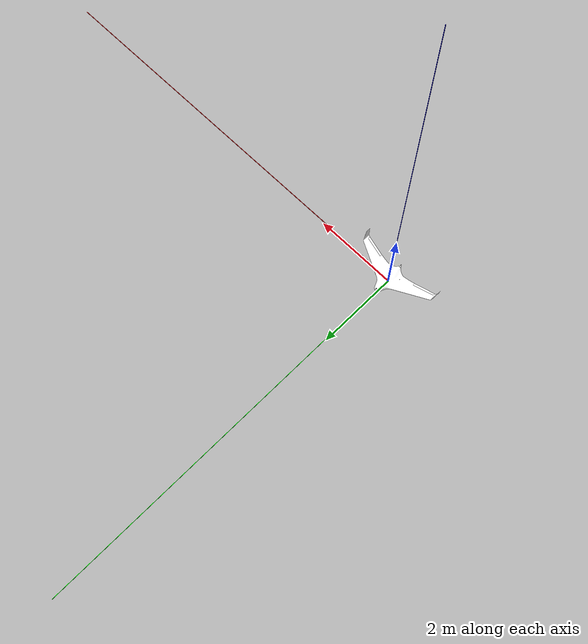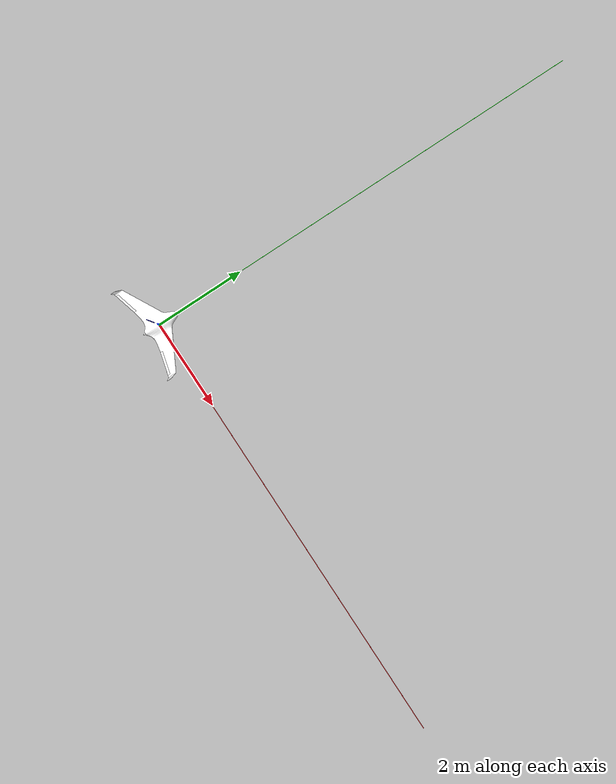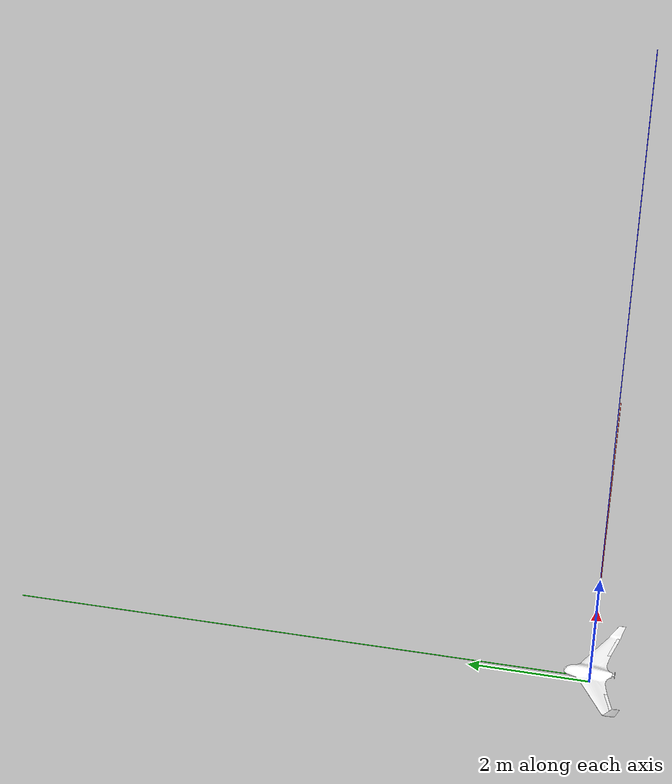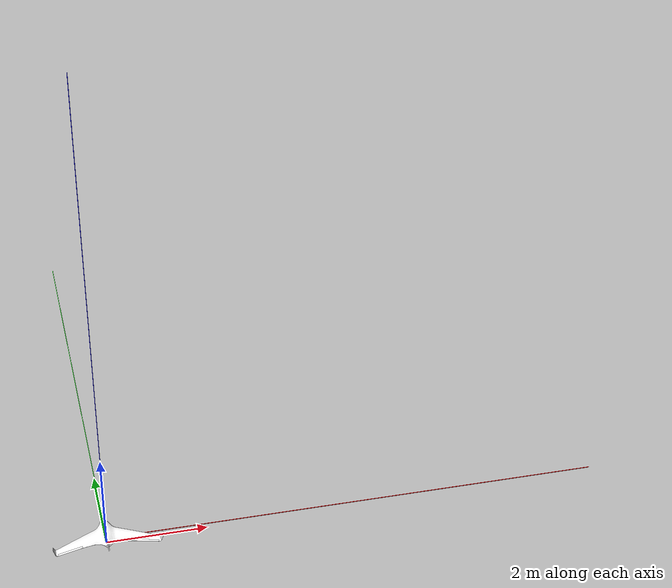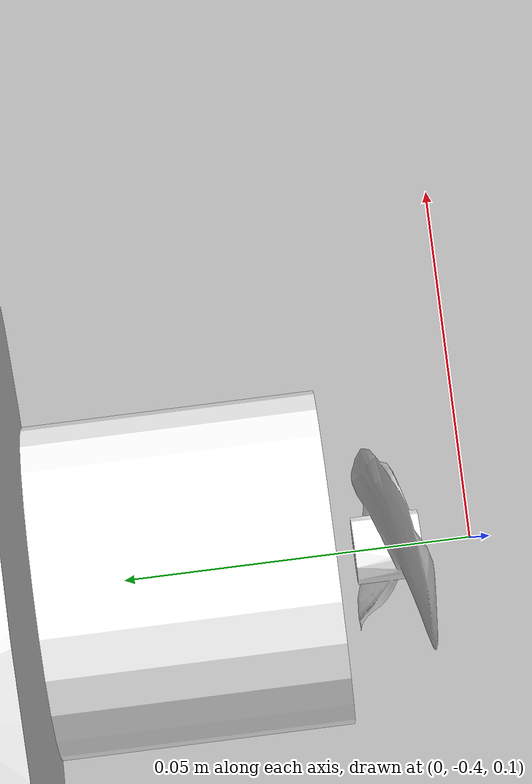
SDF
<sdf version="1.7">
 <world name="runway">
  <gravity>0 0 -9.8000000000000007</gravity>
  <magnetic_field>6.0000000000000002e-06 2.3e-05 -4.1999999999999998e-05</magnetic_field>
  <atmosphere type="adiabatic"><temperature>288.15</temperature><pressure>101325</pressure></atmosphere>
  <physics name="1ms" type="ignore">
   <max_step_size>0.001</max_step_size>
   <real_time_factor>0</real_time_factor>
  </physics>
  <plugin filename="gz-sim-physics-system" name="gz::sim::systems::Physics"/>
  <plugin filename="gz-sim-user-commands-system" name="gz::sim::systems::UserCommands"/>
  <plugin filename="gz-sim-scene-broadcaster-system" name="gz::sim::systems::SceneBroadcaster"/>
  <plugin filename="gz-sim-imu-system" name="gz::sim::systems::Imu"/>
  <plugin filename="gz-sim-magnetometer-system" name="gz::sim::systems::Magnetometer"/>
  <plugin filename="gz-sim-navsat-system" name="gz::sim::systems::NavSat"/>
  <plugin filename="gz-sim-air-pressure-system" name="gz::sim::systems::AirPressure">
   <topic>/world/runway/air_pressure</topic>
  </plugin>
  <scene><ambient>1.0 1.0 1.0</ambient><background>0.8 0.8 0.8</background></scene>
  <spherical_coordinates>
   <latitude_deg>35.363262</latitude_deg>
   <longitude_deg>149.165237</longitude_deg>
   <elevation>584</elevation>
   <heading_deg>0</heading_deg>
   <surface_model>EARTH_WGS84</surface_model>
  </spherical_coordinates>
  <wind><linear_velocity>0 0 0</linear_velocity></wind>
  <plugin filename="libgz-sim8-wind-effects-system.so" name="gz::sim::systems::WindEffects">
   <horizontal>
    <magnitude>
     <time_for_rise>10</time_for_rise>
     <sin><amplitude_percent>0.05</amplitude_percent><period>60</period></sin>
     <noise type="gaussian"><mean>0</mean><stddev>0.0002</stddev></noise>
    </magnitude>
    <direction>
     <time_for_rise>30</time_for_rise>
     <sin><amplitude>5</amplitude><period>20</period></sin>
     <noise type="gaussian"><mean>0</mean><stddev>0.03</stddev></noise>
    </direction>
   </horizontal>
   <vertical><noise type="gaussian"><mean>0</mean><stddev>0.03</stddev></noise></vertical>
  </plugin>
  <light type="directional" name="sun">
   <pose>0 0 10 0 0 0</pose>
   <diffuse>0.8 0.8 0.8 1</diffuse>
   <specular>0.8 0.8 0.8 1</specular>
   <attenuation>
    <range>1000</range>
    <constant>0.9</constant>
    <linear>0.01</linear>
    <quadratic>0.001</quadratic>
   </attenuation>
   <direction>-0.5 0.1 -0.9</direction>
  </light>
  <model name="axes">
   <static>1</static>
   <link name="link">
    <visual name="r">
     <cast_shadows>0</cast_shadows>
     <pose>5 0 0.1 0 0 0</pose>
     <geometry><box><size>10 0.01 0.01</size></box></geometry>
     <material>
      <ambient>1 0 0 1</ambient>
      <diffuse>1 0 0 1</diffuse>
      <emissive>1 0 0 1</emissive>
      <specular>0.5 0.5 0.5 1</specular>
     </material>
    </visual>
    <visual name="g">
     <cast_shadows>0</cast_shadows>
     <pose>0 5 0.1 0 0 0</pose>
     <geometry><box><size>0.01 10 0.01</size></box></geometry>
     <material>
      <ambient>0 1 0 1</ambient>
      <diffuse>0 1 0 1</diffuse>
      <emissive>0 1 0 1</emissive>
      <specular>0.5 0.5 0.5 1</specular>
     </material>
    </visual>
    <visual name="b">
     <cast_shadows>0</cast_shadows>
     <pose>0 0 5.1 0 0 0</pose>
     <geometry><box><size>0.01 0.01 10</size></box></geometry>
     <material>
      <ambient>0 0 1 1</ambient>
      <diffuse>0 0 1 1</diffuse>
      <emissive>0 0 1 1</emissive>
      <specular>0.5 0.5 0.5 1</specular>
     </material>
    </visual>
   </link>
  </model>
  <include><pose degrees="true">0 0 0.2 0 0 90</pose><uri>model://skywalker_x8</uri></include>
 </world>
</sdf>

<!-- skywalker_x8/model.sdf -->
<sdf version="1.7">
  <model name="skywalker_x8">
    <pose>0 0 0.246 0 0 0</pose>

    <link name='base_link'>
      <pose>0 0 0 0 0 0</pose>
      <inertial>
        <pose>0 0 0 0 0 0</pose>
        <mass>4.5</mass>
        <inertia>
          <ixx>0.45</ixx>
          <ixy>0</ixy>
          <ixz>0.06</ixz>
          <iyy>0.325</iyy>
          <iyz>0</iyz>
          <izz>0.75</izz>
        </inertia>
      </inertial>
      <collision name='base_link_collision'>
        <pose>0 0 -0.07 0 0 0</pose>
        <geometry>
          <box>
            <size>0.80 2.15 0.2</size>
          </box>
        </geometry>
      </collision>
      <visual name='base_link_visual'>
        <geometry>
          <mesh>
            <uri>model://skywalker_x8/meshes/x8_wing.dae</uri>
          </mesh>
        </geometry>
        <material>
          <diffuse>1.0 1.0 1.0</diffuse>
          <specular>1.0 1.0 1.0</specular>
          <pbr>
            <metal>
                <albedo_map>model://skywalker_x8/materials/textures/x8.tga</albedo_map>
                <metalness>0.1</metalness>
            </metal>
          </pbr>
        </material>
      </visual>
      <visual name='m4'>
        <pose degrees="true">-0.361 0 0.0 0 90 0</pose>
        <geometry>
          <cylinder>
            <length>0.035</length>
            <radius>0.02</radius>
          </cylinder>
        </geometry>
        <material>
          <ambient>1 1 1</ambient>
          <diffuse>1 1 1</diffuse>
          <specular>1 1 1</specular>
          <pbr>
            <metal>
              <albedo_map>model://skywalker_x8/materials/textures/blue_metal/blue_metal_basecolor.jpg</albedo_map>
              <metalness_map>model://skywalker_x8/materials/textures/blue_metal/blue_metal_metallic.jpg</metalness_map>
              <normal_map>model://skywalker_x8/materials/textures/blue_metal/blue_metal_normal.jpg</normal_map>
              <roughness_map>model://skywalker_x8/materials/textures/blue_metal/blue_metal_roughness.jpg</roughness_map>
              <roughness>1.0</roughness>
              <metalness>1.0</metalness>
            </metal>
          </pbr>
        </material>
      </visual>
      <sensor name="magnetometer_sensor" type="magnetometer">
        <pose>0 0 0 0 0 0</pose>
        <always_on>1</always_on>
        <update_rate>50</update_rate>
      </sensor>
      <sensor name="navsat_sensor" type="navsat">
        <always_on>1</always_on>
        <update_rate>10</update_rate>
        <navsat>
          <position_sensing></position_sensing>
          <velocity_sensing></velocity_sensing>
        </navsat>
      </sensor>
      <!-- save for debugging use -->
    </link>

    <link name='rotor_pusher'>
      <pose degrees="true">-0.385 0 0.0 0 90 0</pose>
      <inertial>
        <mass>0.025</mass>
        <inertia>
          <ixx>9.75e-06</ixx>
          <ixy>0</ixy>
          <ixz>0</ixz>
          <iyy>0.000166704</iyy>
          <iyz>0</iyz>
          <izz>0.000167604</izz>
        </inertia>
      </inertial>
      <collision name='collision'>
        <pose>0 0 0 0 0 0</pose>
        <geometry>
          <cylinder>
            <length>0.005</length>
            <radius>0.065</radius>
          </cylinder>
        </geometry>
      </collision>
      <visual name='visual'>
        <pose>0 0 0 0 0 0</pose>
        <geometry>
          <mesh>
            <scale>0.8 0.8 0.8</scale>
            <uri>model://skywalker_x8/meshes/iris_prop_ccw.dae</uri>
          </mesh>
        </geometry>
        <material>
          <diffuse>1.0 1.0 1.0</diffuse>
          <specular>1.0 1.0 1.0</specular>
          <pbr>
            <metal>
                <albedo_map>model://skywalker_x8/materials/textures/x8.tga</albedo_map>
                <metalness>0.5</metalness>
            </metal>
          </pbr>
        </material>
      </visual>
    </link>
    <joint name='rotor_pusher_joint' type='revolute'>
      <child>rotor_pusher</child>
      <parent>base_link</parent>
      <axis>
        <xyz>0 0 1</xyz>
        <limit>
          <lower>-1e+16</lower>
          <upper>1e+16</upper>
        </limit>
        <dynamics>
          <damping>0.002</damping>
        </dynamics>
        <use_parent_model_frame>1</use_parent_model_frame>
      </axis>
    </joint>

    <link name="left_elevon">
      <inertial>
        <mass>0.1</mass>
        <inertia>
          <ixx>0.000102319</ixx>
          <ixy>0</ixy>
          <iyy>0.00334417</iyy>
          <ixz>0</ixz>
          <iyz>0</iyz>
          <izz>0.003446072</izz>
        </inertia>
        <pose>-0.30 0.75 -0.005 0 0 0</pose>
      </inertial>
      <visual name='left_elevon_visual'>
        <geometry>
          <mesh>
            <uri>model://skywalker_x8/meshes/x8_elevon_left.dae</uri>
          </mesh>
        </geometry>
        <material>
          <diffuse>1.0 1.0 1.0</diffuse>
          <specular>1.0 1.0 1.0</specular>
          <pbr>
            <metal>
                <albedo_map>model://skywalker_x8/materials/textures/x8.tga</albedo_map>
                <metalness>0.1</metalness>
            </metal>
          </pbr>
        </material>
      </visual>
    </link>

    <link name="right_elevon">
      <inertial>
        <mass>0.1</mass>
        <inertia>
          <ixx>0.000102319</ixx>
          <ixy>0</ixy>
          <iyy>0.00334417</iyy>
          <ixz>0</ixz>
          <iyz>0</iyz>
          <izz>0.003446072</izz>
        </inertia>
        <pose>-0.30 -0.75 -0.005 0 0 0</pose>
      </inertial>
      <visual name='right_elevon_visual'>
        <geometry>
          <mesh>
            <uri>model://skywalker_x8/meshes/x8_elevon_right.dae</uri>
          </mesh>
        </geometry>
        <material>
          <diffuse>1.0 1.0 1.0</diffuse>
          <specular>1.0 1.0 1.0</specular>
          <pbr>
            <metal>
                <albedo_map>model://skywalker_x8/materials/textures/x8.tga</albedo_map>
                <metalness>0.1</metalness>
            </metal>
          </pbr>
        </material>
      </visual>
    </link>

    <!-- Joint range -30/+30 deg. -->
    <joint name='left_elevon_joint' type='revolute'>
      <parent>base_link</parent>
      <child>left_elevon</child>
      <pose>-0.27 0.6 -0.005 0 0 0.265</pose>
      <axis>
        <xyz>0 1 0</xyz>
        <limit>
          <lower>-0.53</lower>
          <upper>0.53</upper>
        </limit>
        <dynamics>
          <damping>0.1</damping>
        </dynamics>
      </axis>
    </joint>

    <!-- Joint range -30/+30 deg. -->
    <joint name='right_elevon_joint' type='revolute'>
      <parent>base_link</parent>
      <child>right_elevon</child>
      <pose>-0.27 -0.6 -0.005 0 0 -0.265</pose>
      <axis>
        <xyz>0 1 0</xyz>
        <limit>
          <lower>-0.53</lower>
          <upper>0.53</upper>
        </limit>
        <dynamics>
          <damping>0.1</damping>
        </dynamics>
      </axis>
    </joint>

    <!-- sensors -->
    <link name='imu_link'>
      <inertial>
        <pose>0 0 0 0 0 0</pose>
        <mass>0.15</mass>
        <inertia>
          <ixx>0.00002</ixx>
          <ixy>0</ixy>
          <ixz>0</ixz>
          <iyy>0.00002</iyy>
          <iyz>0</iyz>
          <izz>0.00002</izz>
        </inertia>
      </inertial>
      <sensor name="imu_sensor" type="imu">
        <pose degrees="true">0 0 0 0 0 0</pose>
        <always_on>1</always_on>
        <update_rate>1000.0</update_rate>
      </sensor>
    </link>
    <joint name='skywalker_x8/imu_joint' type='revolute'>
      <child>imu_link</child>
      <parent>base_link</parent>
      <axis>
        <xyz>0 0 1</xyz>
        <limit>
          <lower>0</lower>
          <upper>0</upper>
          <effort>0</effort>
          <velocity>0</velocity>
        </limit>
        <dynamics>
          <damping>1.0</damping>
        </dynamics>
        <use_parent_model_frame>1</use_parent_model_frame>
      </axis>
    </joint>

    <!-- plugins -->
    <plugin filename="gz-sim-joint-state-publisher-system"
      name="gz::sim::systems::JointStatePublisher">
    </plugin>

    <plugin name="gz::sim::systems::OdometryPublisher"
      filename="gz-sim-odometry-publisher-system">
      <odom_frame>odom</odom_frame>
      <robot_base_frame>base_link</robot_base_frame>
      <dimensions>3</dimensions>
    </plugin>

    <!-- rotor_pusher lift-drag -->
    <plugin filename="gz-sim-lift-drag-system"
        name="gz::sim::systems::LiftDrag">
      <a0>0.30</a0>
      <alpha_stall>1.4</alpha_stall>
      <cla>4.2500</cla>
      <cda>0.10</cda>
      <cma>0.0</cma>
      <cla_stall>-0.025</cla_stall>
      <cda_stall>0.0</cda_stall>
      <cma_stall>0.0</cma_stall>
      <area>0.02</area>
      <air_density>1.2041</air_density>
      <cp>0.074205 0 0</cp>
      <forward>0 1 0</forward>
      <upward>0 0 1</upward>
      <link_name>rotor_pusher</link_name>
    </plugin>
    <plugin filename="gz-sim-lift-drag-system"
        name="gz::sim::systems::LiftDrag">
      <a0>0.30</a0>
      <alpha_stall>1.4</alpha_stall>
      <cla>4.2500</cla>
      <cda>0.10</cda>
      <cma>0.0</cma>
      <cla_stall>-0.025</cla_stall>
      <cda_stall>0.0</cda_stall>
      <cma_stall>0.0</cma_stall>
      <area>0.02</area>
      <air_density>1.2041</air_density>
      <cp>-0.074205 0 0</cp>
      <forward>0 -1 0</forward>
      <upward>0 0 1</upward>
      <link_name>rotor_pusher</link_name>
    </plugin>
    <!-- wing lift-drag -->
    <plugin filename="gz-sim-lift-drag-system"
        name="gz::sim::systems::LiftDrag">
      <a0>0.13</a0>
      <cla>3.7</cla>
      <cda>0.06417112299</cda>
      <cma>0.0</cma>
      <alpha_stall>0.3391428111</alpha_stall>
      <cla_stall>-3.85</cla_stall>
      <cda_stall>-0.9233984055</cda_stall>
      <cma_stall>0.0</cma_stall>
      <cp>0.01 0 0</cp>
      <area>0.80</area>
      <air_density>1.2041</air_density>
      <forward>1 0 0</forward>
      <upward>0 0 1</upward>
      <link_name>base_link</link_name>
    </plugin>
    <!-- left_elevon lift-drag -->
    <plugin filename="gz-sim-lift-drag-system"
        name="gz::sim::systems::LiftDrag">
      <a0>0.15</a0>
      <cla>6.8</cla>
      <cda>0.06417112299</cda>
      <cma>0.0</cma>
      <alpha_stall>0.6391428111</alpha_stall>
      <cla_stall>-3.85</cla_stall>
      <cda_stall>-0.9233984055</cda_stall>
      <cma_stall>0.0</cma_stall>
      <cp>-0.30 0.75 -0.005</cp>
      <area>0.10</area>
      <air_density>1.2041</air_density>
      <forward>1 0 0</forward>
      <upward>0 0 1</upward>
      <link_name>base_link</link_name>
      <control_joint_name>left_elevon_joint</control_joint_name>
      <control_joint_rad_to_cl>-5.0</control_joint_rad_to_cl>
    </plugin>
    <!-- right_elevon lift-drag -->
    <plugin filename="gz-sim-lift-drag-system"
        name="gz::sim::systems::LiftDrag">
      <a0>0.15</a0>
      <cla>6.8</cla>
      <cda>0.06417112299</cda>
      <cma>0.0</cma>
      <alpha_stall>0.6391428111</alpha_stall>
      <cla_stall>-3.85</cla_stall>
      <cda_stall>-0.9233984055</cda_stall>
      <cma_stall>0.0</cma_stall>
      <cp>-0.30 -0.75 -0.005</cp>
      <area>0.10</area>
      <air_density>1.2041</air_density>
      <forward>1 0 0</forward>
      <upward>0 0 1</upward>
      <link_name>base_link</link_name>
      <control_joint_name>right_elevon_joint</control_joint_name>
      <control_joint_rad_to_cl>-5.0</control_joint_rad_to_cl>
    </plugin>
    <!-- left_winglet lift-drag -->
    <plugin filename="gz-sim-lift-drag-system"
        name="gz::sim::systems::LiftDrag">
      <a0>0.0</a0>
      <cla>4.752798721</cla>
      <cda>0.6417112299</cda>
      <cma>0.0</cma>
      <alpha_stall>0.3391428111</alpha_stall>
      <cla_stall>-3.85</cla_stall>
      <cda_stall>-0.9233984055</cda_stall>
      <cma_stall>0.0</cma_stall>
      <cp>-0.36 1.04 0.08</cp>
      <area>0.12</area>
      <air_density>1.2041</air_density>
      <forward>1 0 0</forward>
      <upward>0 1 0</upward>
      <link_name>base_link</link_name>
    </plugin>
    <!-- right_winglet lift-drag -->
    <plugin filename="gz-sim-lift-drag-system"
        name="gz::sim::systems::LiftDrag">
      <a0>0.0</a0>
      <cla>4.752798721</cla>
      <cda>0.6417112299</cda>
      <cma>0.0</cma>
      <alpha_stall>0.3391428111</alpha_stall>
      <cla_stall>-3.85</cla_stall>
      <cda_stall>-0.9233984055</cda_stall>
      <cma_stall>0.0</cma_stall>
      <cp>-0.36 -1.04 0.08</cp>
      <area>0.12</area>
      <air_density>1.2041</air_density>
      <forward>1 0 0</forward>
      <upward>0 -1 0</upward>
      <link_name>base_link</link_name>
    </plugin>

    <!-- original from standard_vtol -->
    <!-- left_wing_lift-drag -->
    <!-- right_wing_lift-drag -->

    <plugin filename="gz-sim-apply-joint-force-system"
      name="gz::sim::systems::ApplyJointForce">
      <joint_name>rotor_pusher_joint</joint_name>
    </plugin>
    <plugin filename="gz-sim-apply-joint-force-system"
      name="gz::sim::systems::ApplyJointForce">
      <joint_name>left_elevon_joint</joint_name>
    </plugin>
    <plugin filename="gz-sim-apply-joint-force-system"
      name="gz::sim::systems::ApplyJointForce">
      <joint_name>right_elevon_joint</joint_name>
    </plugin>

    <plugin name="ArduPilotPlugin" filename="ArduPilotPlugin">
      <!-- Port settings -->
      <fdm_addr>127.0.0.1</fdm_addr>
      <fdm_port_in>9002</fdm_port_in>
      <connectionTimeoutMaxCount>5</connectionTimeoutMaxCount>
      <lock_step>1</lock_step>

      <modelXYZToAirplaneXForwardZDown degrees="true">0 0 0 180 0 0</modelXYZToAirplaneXForwardZDown>
      <gazeboXYZToNED degrees="true">0 0 0 180 0 90</gazeboXYZToNED>

      <!-- Sensors -->
      <imuName>imu_sensor</imuName>

      <!--
          incoming control command [0, 1]
          so offset it by 0 to get [0, 1]
          and divide max target by 1.
          offset = 0
          multiplier = 838 max rpm / 1 = 838
        -->

      <!--
          SERVO3_FUNCTION   70 (Throttle)
          SERVO3_MAX        2000
          SERVO3_MIN        1000
          SERVO3_REVERSED   0
          SERVO3_TRIM       1000
       -->
      <control channel="2">
        <jointName>rotor_pusher_joint</jointName>
        <useForce>1</useForce>
        <multiplier>838</multiplier>
        <offset>0</offset>
        <servo_min>1000</servo_min>
        <servo_max>2000</servo_max>
        <type>VELOCITY</type>
        <p_gain>0.20</p_gain>
        <i_gain>0</i_gain>
        <d_gain>0</d_gain>
        <i_max>0</i_max>
        <i_min>0</i_min>
        <cmd_max>2.5</cmd_max>
        <cmd_min>-2.5</cmd_min>
      </control>

      <control channel="0">
        <jointName>left_elevon_joint</jointName>
        <useForce>1</useForce>
        <multiplier>1.048</multiplier>
        <offset>-0.5</offset>
        <servo_min>1100</servo_min>
        <servo_max>1900</servo_max>
        <type>POSITION</type>
        <p_gain>10.0</p_gain>
        <i_gain>0</i_gain>
        <d_gain>0</d_gain>
        <i_max>0</i_max>
        <i_min>0</i_min>
        <cmd_max>2.5</cmd_max>
        <cmd_min>-2.5</cmd_min>
      </control>

      <!--
          SERVO2_FUNCTION   78 (Elevon Right)
          SERVO2_MAX        1900
          SERVO2_MIN        1100
          SERVO2_REVERSED   0
          SERVO2_TRIM       1500
       -->
      <control channel="1">
        <jointName>right_elevon_joint</jointName>
        <useForce>1</useForce>
        <multiplier>1.048</multiplier>
        <offset>-0.5</offset>
        <servo_min>1100</servo_min>
        <servo_max>1900</servo_max>
        <type>POSITION</type>
        <p_gain>10.0</p_gain>
        <i_gain>0</i_gain>
        <d_gain>0</d_gain>
        <i_max>0</i_max>
        <i_min>0</i_min>
        <cmd_max>2.5</cmd_max>
        <cmd_min>-2.5</cmd_min>
      </control>

    </plugin>
  </model>
</sdf>
